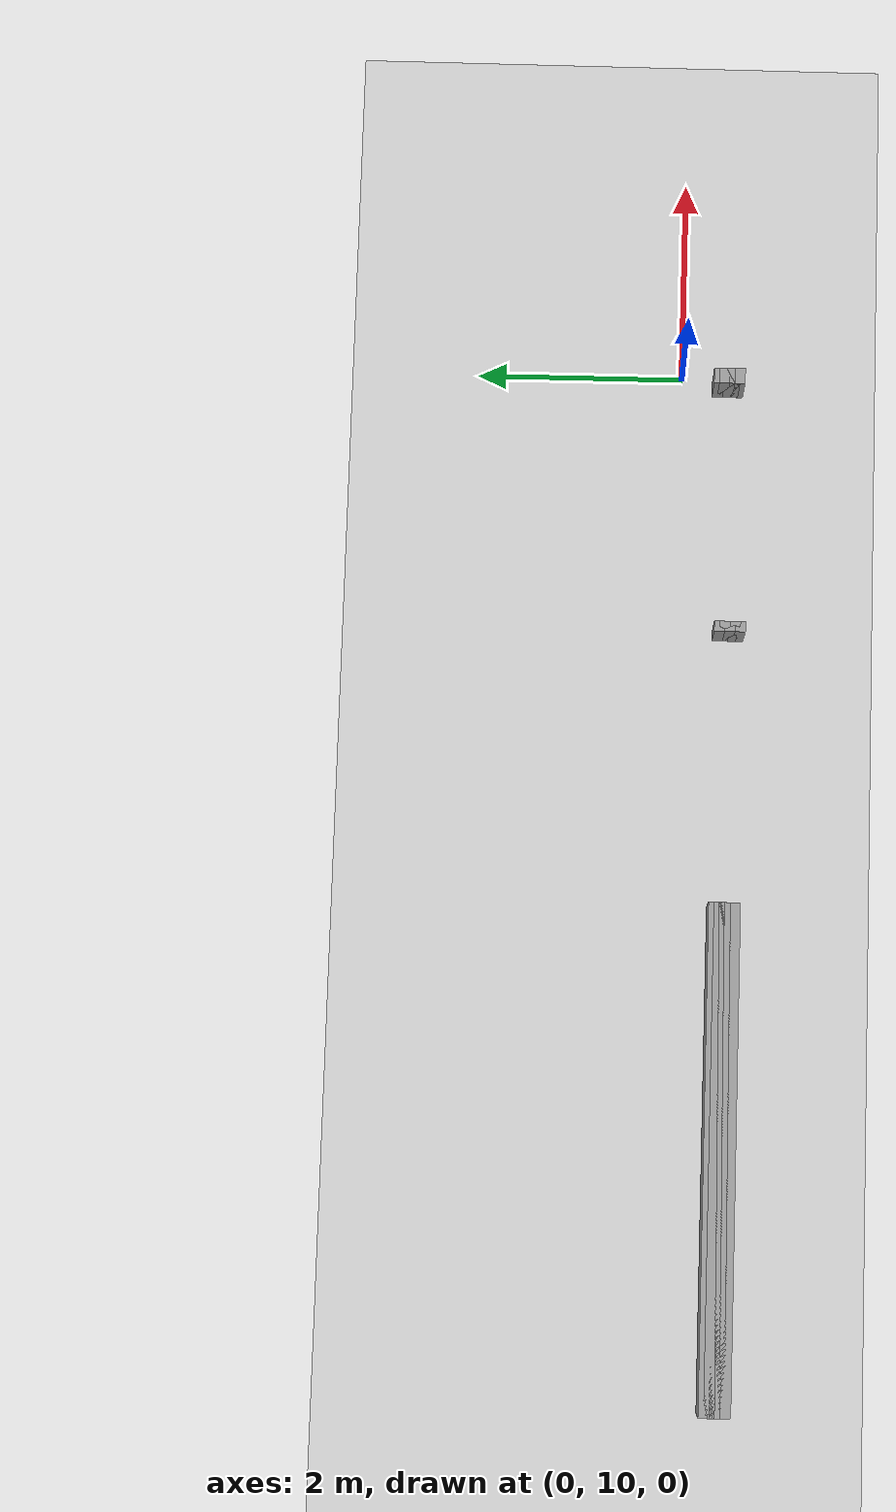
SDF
<sdf version="1.6">
 <world name="GridMap">
  <include><uri>model://sun</uri></include>
  <include><uri>model://ground_plane</uri></include>
  <model name="GridMap">
   <link name="Wall_(51.0,188.0)">
    <collision name="Wall_(51.0,188.0)_Collision">
     <geometry><box><size>0.1 0.1 0.5</size></box></geometry>
     <pose>-2.5500000000000003 9.4 0.25 0 -0 0</pose>
    </collision>
    <inertial>
     <mass>0.5</mass>
     <pose>0 0.01 0 0 0 0</pose>
     <inertia><ixx>0.004</ixx><ixy>0.001</ixy><ixz>0</ixz><iyy>0.006</iyy><iyz>0</iyz><izz>0.007</izz></inertia>
    </inertial>
    <visual name="Wall_(51.0,188.0)_Visual">
     <geometry><box><size>0.1 0.1 0.5</size></box></geometry>
     <pose>-2.5500000000000003 9.4 0.25 0 -0 0</pose>
     <material>
      <script><uri>file://media/materials/scripts/gazebo.material</uri><name>Gazebo/Grey</name></script>
      <ambient>1 1 1 1</ambient>
     </material>
     <meta><layer>0</layer></meta>
    </visual>
   </link>
   <link name="Wall_(151.5,188.0)">
    <collision name="Wall_(151.5,188.0)_Collision">
     <geometry><box><size>4.75 0.1 0.5</size></box></geometry>
     <pose>-7.575 9.4 0.25 0 -0 0</pose>
    </collision>
    <inertial>
     <mass>0.5</mass>
     <pose>0 0.01 0 0 0 0</pose>
     <inertia><ixx>0.004</ixx><ixy>0.001</ixy><ixz>0</ixz><iyy>0.006</iyy><iyz>0</iyz><izz>0.007</izz></inertia>
    </inertial>
    <visual name="Wall_(151.5,188.0)_Visual">
     <geometry><box><size>4.75 0.1 0.5</size></box></geometry>
     <pose>-7.575 9.4 0.25 0 -0 0</pose>
     <material>
      <script><uri>file://media/materials/scripts/gazebo.material</uri><name>Gazebo/Grey</name></script>
      <ambient>1 1 1 1</ambient>
     </material>
     <meta><layer>0</layer></meta>
    </visual>
   </link>
   <link name="Wall_(1.5,189.0)">
    <collision name="Wall_(1.5,189.0)_Collision">
     <geometry><box><size>0.15000000000000002 0.1 0.5</size></box></geometry>
     <pose>-0.07500000000000001 9.450000000000001 0.25 0 -0 0</pose>
    </collision>
    <inertial>
     <mass>0.5</mass>
     <pose>0 0.01 0 0 0 0</pose>
     <inertia><ixx>0.004</ixx><ixy>0.001</ixy><ixz>0</ixz><iyy>0.006</iyy><iyz>0</iyz><izz>0.007</izz></inertia>
    </inertial>
    <visual name="Wall_(1.5,189.0)_Visual">
     <geometry><box><size>0.15000000000000002 0.1 0.5</size></box></geometry>
     <pose>-0.07500000000000001 9.450000000000001 0.25 0 -0 0</pose>
     <material>
      <script><uri>file://media/materials/scripts/gazebo.material</uri><name>Gazebo/Grey</name></script>
      <ambient>1 1 1 1</ambient>
     </material>
     <meta><layer>0</layer></meta>
    </visual>
   </link>
   <link name="Wall_(51.0,189.0)">
    <collision name="Wall_(51.0,189.0)_Collision">
     <geometry><box><size>0.1 0.1 0.5</size></box></geometry>
     <pose>-2.5500000000000003 9.450000000000001 0.25 0 -0 0</pose>
    </collision>
    <inertial>
     <mass>0.5</mass>
     <pose>0 0.01 0 0 0 0</pose>
     <inertia><ixx>0.004</ixx><ixy>0.001</ixy><ixz>0</ixz><iyy>0.006</iyy><iyz>0</iyz><izz>0.007</izz></inertia>
    </inertial>
    <visual name="Wall_(51.0,189.0)_Visual">
     <geometry><box><size>0.1 0.1 0.5</size></box></geometry>
     <pose>-2.5500000000000003 9.450000000000001 0.25 0 -0 0</pose>
     <material>
      <script><uri>file://media/materials/scripts/gazebo.material</uri><name>Gazebo/Grey</name></script>
      <ambient>1 1 1 1</ambient>
     </material>
     <meta><layer>0</layer></meta>
    </visual>
   </link>
   <link name="Wall_(151.5,189.0)">
    <collision name="Wall_(151.5,189.0)_Collision">
     <geometry><box><size>4.75 0.1 0.5</size></box></geometry>
     <pose>-7.575 9.450000000000001 0.25 0 -0 0</pose>
    </collision>
    <inertial>
     <mass>0.5</mass>
     <pose>0 0.01 0 0 0 0</pose>
     <inertia><ixx>0.004</ixx><ixy>0.001</ixy><ixz>0</ixz><iyy>0.006</iyy><iyz>0</iyz><izz>0.007</izz></inertia>
    </inertial>
    <visual name="Wall_(151.5,189.0)_Visual">
     <geometry><box><size>4.75 0.1 0.5</size></box></geometry>
     <pose>-7.575 9.450000000000001 0.25 0 -0 0</pose>
     <material>
      <script><uri>file://media/materials/scripts/gazebo.material</uri><name>Gazebo/Grey</name></script>
      <ambient>1 1 1 1</ambient>
     </material>
     <meta><layer>0</layer></meta>
    </visual>
   </link>
   <link name="Wall_(1.5,190.0)">
    <collision name="Wall_(1.5,190.0)_Collision">
     <geometry><box><size>0.15000000000000002 0.1 0.5</size></box></geometry>
     <pose>-0.07500000000000001 9.5 0.25 0 -0 0</pose>
    </collision>
    <inertial>
     <mass>0.5</mass>
     <pose>0 0.01 0 0 0 0</pose>
     <inertia><ixx>0.004</ixx><ixy>0.001</ixy><ixz>0</ixz><iyy>0.006</iyy><iyz>0</iyz><izz>0.007</izz></inertia>
    </inertial>
    <visual name="Wall_(1.5,190.0)_Visual">
     <geometry><box><size>0.15000000000000002 0.1 0.5</size></box></geometry>
     <pose>-0.07500000000000001 9.5 0.25 0 -0 0</pose>
     <material>
      <script><uri>file://media/materials/scripts/gazebo.material</uri><name>Gazebo/Grey</name></script>
      <ambient>1 1 1 1</ambient>
     </material>
     <meta><layer>0</layer></meta>
    </visual>
   </link>
   <link name="Wall_(51.0,190.0)">
    <collision name="Wall_(51.0,190.0)_Collision">
     <geometry><box><size>0.1 0.1 0.5</size></box></geometry>
     <pose>-2.5500000000000003 9.5 0.25 0 -0 0</pose>
    </collision>
    <inertial>
     <mass>0.5</mass>
     <pose>0 0.01 0 0 0 0</pose>
     <inertia><ixx>0.004</ixx><ixy>0.001</ixy><ixz>0</ixz><iyy>0.006</iyy><iyz>0</iyz><izz>0.007</izz></inertia>
    </inertial>
    <visual name="Wall_(51.0,190.0)_Visual">
     <geometry><box><size>0.1 0.1 0.5</size></box></geometry>
     <pose>-2.5500000000000003 9.5 0.25 0 -0 0</pose>
     <material>
      <script><uri>file://media/materials/scripts/gazebo.material</uri><name>Gazebo/Grey</name></script>
      <ambient>1 1 1 1</ambient>
     </material>
     <meta><layer>0</layer></meta>
    </visual>
   </link>
   <link name="Wall_(151.5,190.0)">
    <collision name="Wall_(151.5,190.0)_Collision">
     <geometry><box><size>4.75 0.1 0.5</size></box></geometry>
     <pose>-7.575 9.5 0.25 0 -0 0</pose>
    </collision>
    <inertial>
     <mass>0.5</mass>
     <pose>0 0.01 0 0 0 0</pose>
     <inertia><ixx>0.004</ixx><ixy>0.001</ixy><ixz>0</ixz><iyy>0.006</iyy><iyz>0</iyz><izz>0.007</izz></inertia>
    </inertial>
    <visual name="Wall_(151.5,190.0)_Visual">
     <geometry><box><size>4.75 0.1 0.5</size></box></geometry>
     <pose>-7.575 9.5 0.25 0 -0 0</pose>
     <material>
      <script><uri>file://media/materials/scripts/gazebo.material</uri><name>Gazebo/Grey</name></script>
      <ambient>1 1 1 1</ambient>
     </material>
     <meta><layer>0</layer></meta>
    </visual>
   </link>
   <link name="Wall_(1.5,191.0)">
    <collision name="Wall_(1.5,191.0)_Collision">
     <geometry><box><size>0.15000000000000002 0.1 0.5</size></box></geometry>
     <pose>-0.07500000000000001 9.55 0.25 0 -0 0</pose>
    </collision>
    <inertial>
     <mass>0.5</mass>
     <pose>0 0.01 0 0 0 0</pose>
     <inertia><ixx>0.004</ixx><ixy>0.001</ixy><ixz>0</ixz><iyy>0.006</iyy><iyz>0</iyz><izz>0.007</izz></inertia>
    </inertial>
    <visual name="Wall_(1.5,191.0)_Visual">
     <geometry><box><size>0.15000000000000002 0.1 0.5</size></box></geometry>
     <pose>-0.07500000000000001 9.55 0.25 0 -0 0</pose>
     <material>
      <script><uri>file://media/materials/scripts/gazebo.material</uri><name>Gazebo/Grey</name></script>
      <ambient>1 1 1 1</ambient>
     </material>
     <meta><layer>0</layer></meta>
    </visual>
   </link>
   <link name="Wall_(51.0,191.0)">
    <collision name="Wall_(51.0,191.0)_Collision">
     <geometry><box><size>0.1 0.1 0.5</size></box></geometry>
     <pose>-2.5500000000000003 9.55 0.25 0 -0 0</pose>
    </collision>
    <inertial>
     <mass>0.5</mass>
     <pose>0 0.01 0 0 0 0</pose>
     <inertia><ixx>0.004</ixx><ixy>0.001</ixy><ixz>0</ixz><iyy>0.006</iyy><iyz>0</iyz><izz>0.007</izz></inertia>
    </inertial>
    <visual name="Wall_(51.0,191.0)_Visual">
     <geometry><box><size>0.1 0.1 0.5</size></box></geometry>
     <pose>-2.5500000000000003 9.55 0.25 0 -0 0</pose>
     <material>
      <script><uri>file://media/materials/scripts/gazebo.material</uri><name>Gazebo/Grey</name></script>
      <ambient>1 1 1 1</ambient>
     </material>
     <meta><layer>0</layer></meta>
    </visual>
   </link>
   <link name="Wall_(151.5,191.0)">
    <collision name="Wall_(151.5,191.0)_Collision">
     <geometry><box><size>4.75 0.1 0.5</size></box></geometry>
     <pose>-7.575 9.55 0.25 0 -0 0</pose>
    </collision>
    <inertial>
     <mass>0.5</mass>
     <pose>0 0.01 0 0 0 0</pose>
     <inertia><ixx>0.004</ixx><ixy>0.001</ixy><ixz>0</ixz><iyy>0.006</iyy><iyz>0</iyz><izz>0.007</izz></inertia>
    </inertial>
    <visual name="Wall_(151.5,191.0)_Visual">
     <geometry><box><size>4.75 0.1 0.5</size></box></geometry>
     <pose>-7.575 9.55 0.25 0 -0 0</pose>
     <material>
      <script><uri>file://media/materials/scripts/gazebo.material</uri><name>Gazebo/Grey</name></script>
      <ambient>1 1 1 1</ambient>
     </material>
     <meta><layer>0</layer></meta>
    </visual>
   </link>
   <link name="Wall_(1.5,192.0)">
    <collision name="Wall_(1.5,192.0)_Collision">
     <geometry><box><size>0.15000000000000002 0.1 0.5</size></box></geometry>
     <pose>-0.07500000000000001 9.600000000000001 0.25 0 -0 0</pose>
    </collision>
    <inertial>
     <mass>0.5</mass>
     <pose>0 0.01 0 0 0 0</pose>
     <inertia><ixx>0.004</ixx><ixy>0.001</ixy><ixz>0</ixz><iyy>0.006</iyy><iyz>0</iyz><izz>0.007</izz></inertia>
    </inertial>
    <visual name="Wall_(1.5,192.0)_Visual">
     <geometry><box><size>0.15000000000000002 0.1 0.5</size></box></geometry>
     <pose>-0.07500000000000001 9.600000000000001 0.25 0 -0 0</pose>
     <material>
      <script><uri>file://media/materials/scripts/gazebo.material</uri><name>Gazebo/Grey</name></script>
      <ambient>1 1 1 1</ambient>
     </material>
     <meta><layer>0</layer></meta>
    </visual>
   </link>
   <link name="Wall_(51.0,192.0)">
    <collision name="Wall_(51.0,192.0)_Collision">
     <geometry><box><size>0.1 0.1 0.5</size></box></geometry>
     <pose>-2.5500000000000003 9.600000000000001 0.25 0 -0 0</pose>
    </collision>
    <inertial>
     <mass>0.5</mass>
     <pose>0 0.01 0 0 0 0</pose>
     <inertia><ixx>0.004</ixx><ixy>0.001</ixy><ixz>0</ixz><iyy>0.006</iyy><iyz>0</iyz><izz>0.007</izz></inertia>
    </inertial>
    <visual name="Wall_(51.0,192.0)_Visual">
     <geometry><box><size>0.1 0.1 0.5</size></box></geometry>
     <pose>-2.5500000000000003 9.600000000000001 0.25 0 -0 0</pose>
     <material>
      <script><uri>file://media/materials/scripts/gazebo.material</uri><name>Gazebo/Grey</name></script>
      <ambient>1 1 1 1</ambient>
     </material>
     <meta><layer>0</layer></meta>
    </visual>
   </link>
   <link name="Wall_(151.5,192.0)">
    <collision name="Wall_(151.5,192.0)_Collision">
     <geometry><box><size>4.75 0.1 0.5</size></box></geometry>
     <pose>-7.575 9.600000000000001 0.25 0 -0 0</pose>
    </collision>
    <inertial>
     <mass>0.5</mass>
     <pose>0 0.01 0 0 0 0</pose>
     <inertia><ixx>0.004</ixx><ixy>0.001</ixy><ixz>0</ixz><iyy>0.006</iyy><iyz>0</iyz><izz>0.007</izz></inertia>
    </inertial>
    <visual name="Wall_(151.5,192.0)_Visual">
     <geometry><box><size>4.75 0.1 0.5</size></box></geometry>
     <pose>-7.575 9.600000000000001 0.25 0 -0 0</pose>
     <material>
      <script><uri>file://media/materials/scripts/gazebo.material</uri><name>Gazebo/Grey</name></script>
      <ambient>1 1 1 1</ambient>
     </material>
     <meta><layer>0</layer></meta>
    </visual>
   </link>
   <link name="Wall_(1.5,193.0)">
    <collision name="Wall_(1.5,193.0)_Collision">
     <geometry><box><size>0.15000000000000002 0.1 0.5</size></box></geometry>
     <pose>-0.07500000000000001 9.65 0.25 0 -0 0</pose>
    </collision>
    <inertial>
     <mass>0.5</mass>
     <pose>0 0.01 0 0 0 0</pose>
     <inertia><ixx>0.004</ixx><ixy>0.001</ixy><ixz>0</ixz><iyy>0.006</iyy><iyz>0</iyz><izz>0.007</izz></inertia>
    </inertial>
    <visual name="Wall_(1.5,193.0)_Visual">
     <geometry><box><size>0.15000000000000002 0.1 0.5</size></box></geometry>
     <pose>-0.07500000000000001 9.65 0.25 0 -0 0</pose>
     <material>
      <script><uri>file://media/materials/scripts/gazebo.material</uri><name>Gazebo/Grey</name></script>
      <ambient>1 1 1 1</ambient>
     </material>
     <meta><layer>0</layer></meta>
    </visual>
   </link>
   <static>1</static>
  </model>
 </world>
</sdf>
